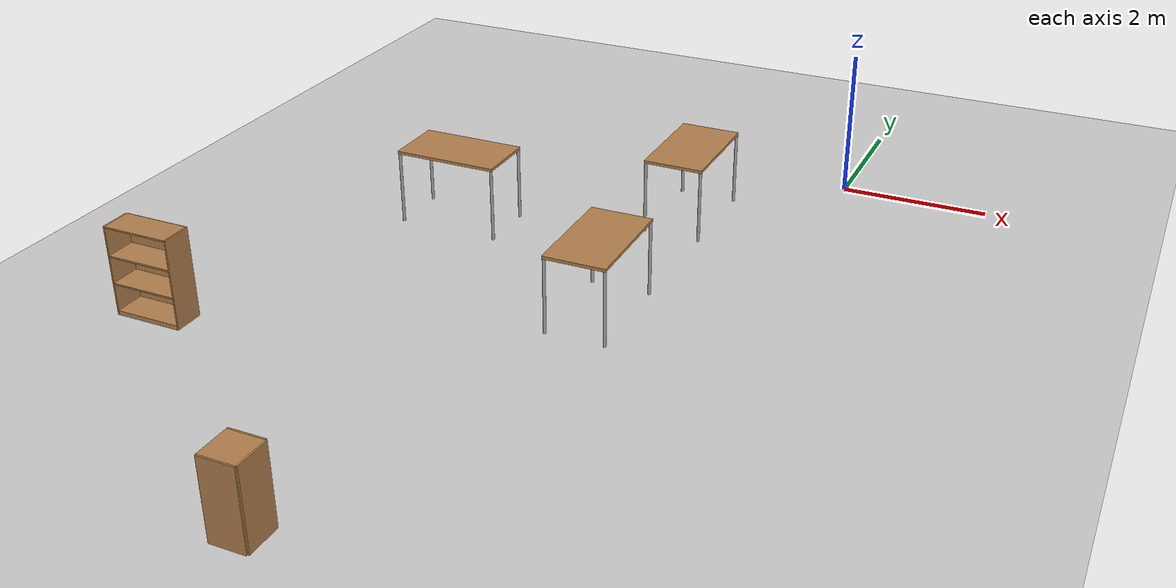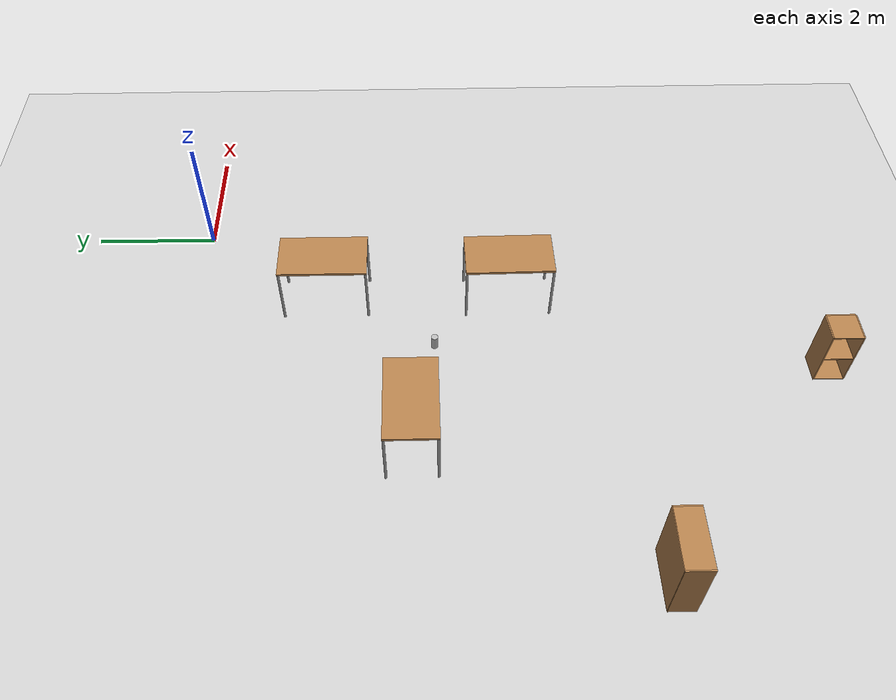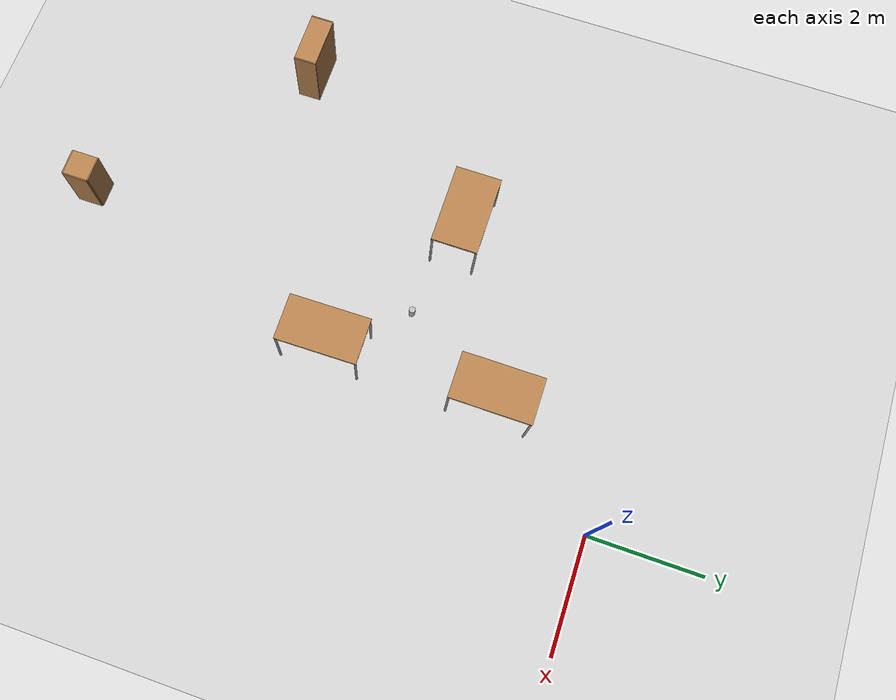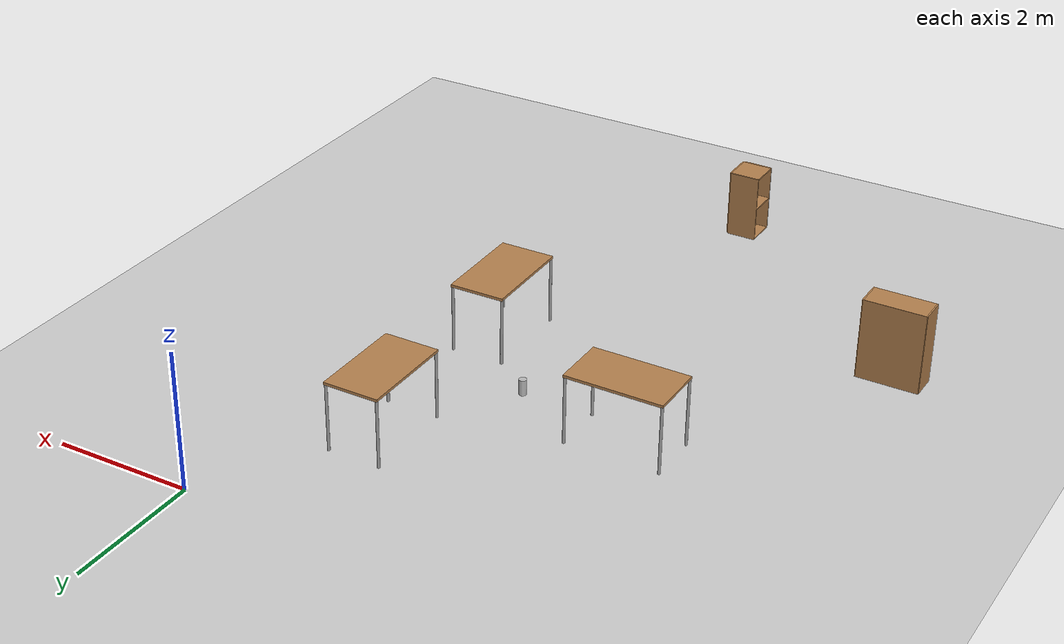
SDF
<sdf version="1.6">
 <world name="default">
  <light name="sun" type="directional">
   <pose>0 0 10 0 -0 0</pose>
   <diffuse>0.8 0.8 0.8 1</diffuse>
   <specular>0.1 0.1 0.1 1</specular>
   <attenuation>
    <range>1000</range>
    <constant>0.9</constant>
    <linear>0.01</linear>
    <quadratic>0.001</quadratic>
   </attenuation>
   <direction>-0.5 0.5 -1</direction>
  </light>
  <model name="ground_plane">
   <static>1</static>
   <link name="link">
    <collision name="collision">
     <geometry><plane><normal>0 0 1</normal><size>100 100</size></plane></geometry>
     <surface><friction><ode><mu>100</mu><mu2>50</mu2></ode></friction></surface>
    </collision>
    <visual name="visual">
     <transparency>1</transparency>
     <cast_shadows>0</cast_shadows>
     <geometry><plane><normal>0 0 1</normal><size>100 100</size></plane></geometry>
     <material>
      <script><uri>file://media/materials/scripts/gazebo.material</uri><name>Gazebo/Grey</name></script>
     </material>
    </visual>
   </link>
  </model>
  <gravity>0 0 -9.8</gravity>
  <magnetic_field>6e-06 2.3e-05 -4.2e-05</magnetic_field>
  <atmosphere type="adiabatic"/>
  <physics name="default_physics" default="0" type="ode">
   <max_step_size>0.001</max_step_size>
   <real_time_factor>1</real_time_factor>
   <real_time_update_rate>1000</real_time_update_rate>
  </physics>
  <scene><ambient>0.4 0.4 0.4 1</ambient><background>0.7 0.7 0.7 1</background><shadows>1</shadows></scene>
  <spherical_coordinates>
   <surface_model>EARTH_WGS84</surface_model>
   <latitude_deg>0</latitude_deg>
   <longitude_deg>0</longitude_deg>
   <elevation>0</elevation>
   <heading_deg>0</heading_deg>
  </spherical_coordinates>
  <light name="user_point_light_0" type="point">
   <pose>-1.65158 1.85099 1 0 -0 0</pose>
   <diffuse>0.5 0.5 0.5 1</diffuse>
   <specular>0.1 0.1 0.1 1</specular>
   <attenuation>
    <range>20</range>
    <constant>0.5</constant>
    <linear>0.01</linear>
    <quadratic>0.001</quadratic>
   </attenuation>
   <cast_shadows>0</cast_shadows>
   <direction>0 0 -1</direction>
  </light>
  <light name="user_point_light_1" type="point">
   <pose>-6.97544 -8.68415 1 0 -0 0</pose>
   <diffuse>0.5 0.5 0.5 1</diffuse>
   <specular>0.1 0.1 0.1 1</specular>
   <attenuation>
    <range>20</range>
    <constant>0.5</constant>
    <linear>0.01</linear>
    <quadratic>0.001</quadratic>
   </attenuation>
   <cast_shadows>0</cast_shadows>
   <direction>0 0 -1</direction>
  </light>
  <model name="table">
   <static>0</static>
   <link name="link">
    <collision name="surface">
     <pose>0 0 1 0 -0 0</pose>
     <geometry><box><size>1.5 0.8 0.03</size></box></geometry>
     <surface><friction><ode><mu>0.6</mu><mu2>0.6</mu2></ode></friction></surface>
    </collision>
    <visual name="visual1">
     <pose>0 0 1 0 -0 0</pose>
     <geometry><box><size>1.4 0.8 0.04</size></box></geometry>
     <material>
      <script><uri>file://media/materials/scripts/gazebo.material</uri><name>Gazebo/Wood</name></script>
     </material>
    </visual>
    <collision name="front_left_leg">
     <pose>0.68 0.38 0.5 0 -0 0</pose>
     <geometry><cylinder><radius>0.02</radius><length>1</length></cylinder></geometry>
    </collision>
    <visual name="front_left_leg">
     <pose>0.68 0.38 0.5 0 -0 0</pose>
     <geometry><cylinder><radius>0.02</radius><length>1</length></cylinder></geometry>
     <material>
      <script><uri>file://media/materials/scripts/gazebo.material</uri><name>Gazebo/Grey</name></script>
     </material>
    </visual>
    <collision name="front_right_leg">
     <pose>0.68 -0.38 0.5 0 -0 0</pose>
     <geometry><cylinder><radius>0.02</radius><length>1</length></cylinder></geometry>
    </collision>
    <visual name="front_right_leg">
     <pose>0.68 -0.38 0.5 0 -0 0</pose>
     <geometry><cylinder><radius>0.02</radius><length>1</length></cylinder></geometry>
     <material>
      <script><uri>file://media/materials/scripts/gazebo.material</uri><name>Gazebo/Grey</name></script>
     </material>
    </visual>
    <collision name="back_right_leg">
     <pose>-0.68 -0.38 0.5 0 -0 0</pose>
     <geometry><cylinder><radius>0.02</radius><length>1</length></cylinder></geometry>
    </collision>
    <visual name="back_right_leg">
     <pose>-0.68 -0.38 0.5 0 -0 0</pose>
     <geometry><cylinder><radius>0.02</radius><length>1</length></cylinder></geometry>
     <material>
      <script><uri>file://media/materials/scripts/gazebo.material</uri><name>Gazebo/Grey</name></script>
     </material>
    </visual>
    <collision name="back_left_leg">
     <pose>-0.68 0.38 0.5 0 -0 0</pose>
     <geometry><cylinder><radius>0.02</radius><length>1</length></cylinder></geometry>
    </collision>
    <visual name="back_left_leg">
     <pose>-0.68 0.38 0.5 0 -0 0</pose>
     <geometry><cylinder><radius>0.02</radius><length>1</length></cylinder></geometry>
     <material>
      <script><uri>file://media/materials/scripts/gazebo.material</uri><name>Gazebo/Grey</name></script>
     </material>
    </visual>
    <inertial>
     <inertia><ixx>1</ixx><ixy>0</ixy><ixz>0</ixz><iyy>1</iyy><iyz>0</iyz><izz>1</izz></inertia>
     <mass>1</mass>
    </inertial>
   </link>
   <pose>-1.57844 -2.11063 0.189796 2e-06 -4e-06 -1.57217</pose>
  </model>
  <model name="table_0">
   <static>0</static>
   <link name="link">
    <collision name="surface">
     <pose>0 0 1 0 -0 0</pose>
     <geometry><box><size>1.5 0.8 0.03</size></box></geometry>
     <surface><friction><ode><mu>0.6</mu><mu2>0.6</mu2></ode></friction></surface>
    </collision>
    <visual name="visual1">
     <pose>0 0 1 0 -0 0</pose>
     <geometry><box><size>1.4 0.8 0.04</size></box></geometry>
     <material>
      <script><uri>file://media/materials/scripts/gazebo.material</uri><name>Gazebo/Wood</name></script>
     </material>
    </visual>
    <collision name="front_left_leg">
     <pose>0.68 0.38 0.5 0 -0 0</pose>
     <geometry><cylinder><radius>0.02</radius><length>1</length></cylinder></geometry>
    </collision>
    <visual name="front_left_leg">
     <pose>0.68 0.38 0.5 0 -0 0</pose>
     <geometry><cylinder><radius>0.02</radius><length>1</length></cylinder></geometry>
     <material>
      <script><uri>file://media/materials/scripts/gazebo.material</uri><name>Gazebo/Grey</name></script>
     </material>
    </visual>
    <collision name="front_right_leg">
     <pose>0.68 -0.38 0.5 0 -0 0</pose>
     <geometry><cylinder><radius>0.02</radius><length>1</length></cylinder></geometry>
    </collision>
    <visual name="front_right_leg">
     <pose>0.68 -0.38 0.5 0 -0 0</pose>
     <geometry><cylinder><radius>0.02</radius><length>1</length></cylinder></geometry>
     <material>
      <script><uri>file://media/materials/scripts/gazebo.material</uri><name>Gazebo/Grey</name></script>
     </material>
    </visual>
    <collision name="back_right_leg">
     <pose>-0.68 -0.38 0.5 0 -0 0</pose>
     <geometry><cylinder><radius>0.02</radius><length>1</length></cylinder></geometry>
    </collision>
    <visual name="back_right_leg">
     <pose>-0.68 -0.38 0.5 0 -0 0</pose>
     <geometry><cylinder><radius>0.02</radius><length>1</length></cylinder></geometry>
     <material>
      <script><uri>file://media/materials/scripts/gazebo.material</uri><name>Gazebo/Grey</name></script>
     </material>
    </visual>
    <collision name="back_left_leg">
     <pose>-0.68 0.38 0.5 0 -0 0</pose>
     <geometry><cylinder><radius>0.02</radius><length>1</length></cylinder></geometry>
    </collision>
    <visual name="back_left_leg">
     <pose>-0.68 0.38 0.5 0 -0 0</pose>
     <geometry><cylinder><radius>0.02</radius><length>1</length></cylinder></geometry>
     <material>
      <script><uri>file://media/materials/scripts/gazebo.material</uri><name>Gazebo/Grey</name></script>
     </material>
    </visual>
    <inertial>
     <inertia><ixx>1</ixx><ixy>0</ixy><ixz>0</ixz><iyy>1</iyy><iyz>0</iyz><izz>1</izz></inertia>
     <mass>1</mass>
    </inertial>
   </link>
   <pose>-1.6024 -5.05129 0.189792 0 0 -1.55863</pose>
  </model>
  <model name="cabinet">
   <static>1</static>
   <link name="cabinet_bottom_plate">
    <inertial>
     <pose>0 0 -1 0 -0 0</pose>
     <inertia><ixx>2.05</ixx><ixy>0</ixy><ixz>0</ixz><iyy>2.05</iyy><iyz>0</iyz><izz>2.05</izz></inertia>
     <mass>25</mass>
    </inertial>
    <collision name="cabinet_bottom_plate_geom">
     <pose>0 0 0.01 0 -0 0</pose>
     <geometry><box><size>0.45 0.45 0.02</size></box></geometry>
    </collision>
    <visual name="cabinet_bottom_plate_geom_visual">
     <pose>0 0 0.01 0 -0 0</pose>
     <geometry><box><size>0.45 0.45 0.02</size></box></geometry>
     <material>
      <script><uri>file://media/materials/scripts/gazebo.material</uri><name>Gazebo/Wood</name></script>
     </material>
    </visual>
    <collision name="cabinet_bottom_plate_geom_cabinet_back_plate">
     <pose>0.235 0 0.51 0 -0 0</pose>
     <geometry><box><size>0.02 0.45 1.02</size></box></geometry>
    </collision>
    <visual name="cabinet_bottom_plate_geom_cabinet_back_plate_visual">
     <pose>0.235 0 0.51 0 -0 0</pose>
     <geometry><box><size>0.02 0.45 1.02</size></box></geometry>
     <material>
      <script><uri>file://media/materials/scripts/gazebo.material</uri><name>Gazebo/Wood</name></script>
     </material>
    </visual>
    <collision name="cabinet_bottom_plate_geom_cabinet_left_plate">
     <pose>0 0.235 0.51 0 -0 0</pose>
     <geometry><box><size>0.45 0.02 1.02</size></box></geometry>
    </collision>
    <visual name="cabinet_bottom_plate_geom_cabinet_left_plate_visual">
     <pose>0 0.235 0.51 0 -0 0</pose>
     <geometry><box><size>0.45 0.02 1.02</size></box></geometry>
     <material>
      <script><uri>file://media/materials/scripts/gazebo.material</uri><name>Gazebo/Wood</name></script>
     </material>
    </visual>
    <collision name="cabinet_bottom_plate_geom_cabinet_middle_plate">
     <pose>0 0 0.51 0 -0 0</pose>
     <geometry><box><size>0.45 0.45 0.02</size></box></geometry>
    </collision>
    <visual name="cabinet_bottom_plate_geom_cabinet_middle_plate_visual">
     <pose>0 0 0.51 0 -0 0</pose>
     <geometry><box><size>0.45 0.45 0.02</size></box></geometry>
     <material>
      <script><uri>file://media/materials/scripts/gazebo.material</uri><name>Gazebo/Wood</name></script>
     </material>
    </visual>
    <collision name="cabinet_bottom_plate_geom_cabinet_right_plate">
     <pose>0 -0.235 0.51 0 -0 0</pose>
     <geometry><box><size>0.45 0.02 1.02</size></box></geometry>
    </collision>
    <visual name="cabinet_bottom_plate_geom_cabinet_right_plate_visual">
     <pose>0 -0.235 0.51 0 -0 0</pose>
     <geometry><box><size>0.45 0.02 1.02</size></box></geometry>
     <material>
      <script><uri>file://media/materials/scripts/gazebo.material</uri><name>Gazebo/Wood</name></script>
     </material>
    </visual>
    <collision name="cabinet_bottom_plate_geom_cabinet_top_plate">
     <pose>0 0 1.01 0 -0 0</pose>
     <geometry><box><size>0.45 0.45 0.02</size></box></geometry>
    </collision>
    <visual name="cabinet_bottom_plate_geom_cabinet_top_plate_visual">
     <pose>0 0 1.01 0 -0 0</pose>
     <geometry><box><size>0.45 0.45 0.02</size></box></geometry>
     <material>
      <script><uri>file://media/materials/scripts/gazebo.material</uri><name>Gazebo/Wood</name></script>
     </material>
    </visual>
   </link>
   <pose>-3.05726 -10.0242 0 0 -0 0</pose>
  </model>
  <model name="bookshelf">
   <static>1</static>
   <link name="link">
    <inertial><mass>1</mass></inertial>
    <collision name="back">
     <pose>0 0.005 0.6 0 -0 0</pose>
     <geometry><box><size>0.9 0.01 1.2</size></box></geometry>
    </collision>
    <visual name="visual1">
     <pose>0 0.005 0.6 0 -0 0</pose>
     <geometry><box><size>0.9 0.01 1.2</size></box></geometry>
     <material>
      <script><uri>file://media/materials/scripts/gazebo.material</uri><name>Gazebo/Wood</name></script>
     </material>
    </visual>
    <collision name="left_side">
     <pose>0.45 -0.195 0.6 0 -0 0</pose>
     <geometry><box><size>0.02 0.4 1.2</size></box></geometry>
    </collision>
    <visual name="visual2">
     <pose>0.45 -0.195 0.6 0 -0 0</pose>
     <geometry><box><size>0.02 0.4 1.2</size></box></geometry>
     <material>
      <script><uri>file://media/materials/scripts/gazebo.material</uri><name>Gazebo/Wood</name></script>
     </material>
    </visual>
    <collision name="right_side">
     <pose>-0.45 -0.195 0.6 0 -0 0</pose>
     <geometry><box><size>0.02 0.4 1.2</size></box></geometry>
    </collision>
    <visual name="visual3">
     <pose>-0.45 -0.195 0.6 0 -0 0</pose>
     <geometry><box><size>0.02 0.4 1.2</size></box></geometry>
     <material>
      <script><uri>file://media/materials/scripts/gazebo.material</uri><name>Gazebo/Wood</name></script>
     </material>
    </visual>
    <collision name="bottom">
     <pose>0 -0.195 0.03 0 -0 0</pose>
     <geometry><box><size>0.88 0.4 0.06</size></box></geometry>
    </collision>
    <visual name="visual4">
     <pose>0 -0.195 0.03 0 -0 0</pose>
     <geometry><box><size>0.88 0.4 0.06</size></box></geometry>
     <material>
      <script><uri>file://media/materials/scripts/gazebo.material</uri><name>Gazebo/Wood</name></script>
     </material>
    </visual>
    <collision name="top">
     <pose>0 -0.195 1.19 0 -0 0</pose>
     <geometry><box><size>0.88 0.4 0.02</size></box></geometry>
    </collision>
    <visual name="visual5">
     <pose>0 -0.195 1.19 0 -0 0</pose>
     <geometry><box><size>0.88 0.4 0.02</size></box></geometry>
     <material>
      <script><uri>file://media/materials/scripts/gazebo.material</uri><name>Gazebo/Wood</name></script>
     </material>
    </visual>
    <collision name="low_shelf">
     <pose>0 -0.195 0.43 0 -0 0</pose>
     <geometry><box><size>0.88 0.4 0.02</size></box></geometry>
    </collision>
    <visual name="visual6">
     <pose>0 -0.195 0.43 0 -0 0</pose>
     <geometry><box><size>0.88 0.4 0.02</size></box></geometry>
     <material>
      <script><uri>file://media/materials/scripts/gazebo.material</uri><name>Gazebo/Wood</name></script>
     </material>
    </visual>
    <collision name="high_shelf">
     <pose>0 -0.195 0.8 0 -0 0</pose>
     <geometry><box><size>0.88 0.4 0.02</size></box></geometry>
    </collision>
    <visual name="visual7">
     <pose>0 -0.195 0.8 0 -0 0</pose>
     <geometry><box><size>0.88 0.4 0.02</size></box></geometry>
     <material>
      <script><uri>file://media/materials/scripts/gazebo.material</uri><name>Gazebo/Wood</name></script>
     </material>
    </visual>
   </link>
   <pose>-6.5804 -6.83982 0 0 -0 0</pose>
  </model>
  <model name="beer">
   <link name="link">
    <pose>0 0 0.115 0 -0 0</pose>
    <inertial>
     <mass>0.39</mass>
     <inertia><ixx>0.00058</ixx><ixy>0</ixy><ixz>0</ixz><iyy>0.00058</iyy><iyz>0</iyz><izz>0.00019</izz></inertia>
    </inertial>
    <collision name="collision">
     <geometry><cylinder><radius>0.055</radius><length>0.23</length></cylinder></geometry>
    </collision>
    <visual name="visual">
     <geometry><cylinder><radius>0.055</radius><length>0.23</length></cylinder></geometry>
     <material>
      <script>
       <uri>model://beer/materials/scripts</uri>
       <uri>model://beer/materials/textures</uri>
       <name>Beer/Diffuse</name>
      </script>
     </material>
    </visual>
   </link>
   <pose>-2.62842 -3.85314 0.189805 2.4e-05 9.2e-05 -3.9e-05</pose>
  </model>
  <model name="table_1">
   <static>0</static>
   <link name="link">
    <collision name="surface">
     <pose>0 0 1 0 -0 0</pose>
     <geometry><box><size>1.5 0.8 0.03</size></box></geometry>
     <surface><friction><ode><mu>0.6</mu><mu2>0.6</mu2></ode></friction></surface>
    </collision>
    <visual name="visual1">
     <pose>0 0 1 0 -0 0</pose>
     <geometry><box><size>1.4 0.8 0.04</size></box></geometry>
     <material>
      <script><uri>file://media/materials/scripts/gazebo.material</uri><name>Gazebo/Wood</name></script>
     </material>
    </visual>
    <collision name="front_left_leg">
     <pose>0.68 0.38 0.5 0 -0 0</pose>
     <geometry><cylinder><radius>0.02</radius><length>1</length></cylinder></geometry>
    </collision>
    <visual name="front_left_leg">
     <pose>0.68 0.38 0.5 0 -0 0</pose>
     <geometry><cylinder><radius>0.02</radius><length>1</length></cylinder></geometry>
     <material>
      <script><uri>file://media/materials/scripts/gazebo.material</uri><name>Gazebo/Grey</name></script>
     </material>
    </visual>
    <collision name="front_right_leg">
     <pose>0.68 -0.38 0.5 0 -0 0</pose>
     <geometry><cylinder><radius>0.02</radius><length>1</length></cylinder></geometry>
    </collision>
    <visual name="front_right_leg">
     <pose>0.68 -0.38 0.5 0 -0 0</pose>
     <geometry><cylinder><radius>0.02</radius><length>1</length></cylinder></geometry>
     <material>
      <script><uri>file://media/materials/scripts/gazebo.material</uri><name>Gazebo/Grey</name></script>
     </material>
    </visual>
    <collision name="back_right_leg">
     <pose>-0.68 -0.38 0.5 0 -0 0</pose>
     <geometry><cylinder><radius>0.02</radius><length>1</length></cylinder></geometry>
    </collision>
    <visual name="back_right_leg">
     <pose>-0.68 -0.38 0.5 0 -0 0</pose>
     <geometry><cylinder><radius>0.02</radius><length>1</length></cylinder></geometry>
     <material>
      <script><uri>file://media/materials/scripts/gazebo.material</uri><name>Gazebo/Grey</name></script>
     </material>
    </visual>
    <collision name="back_left_leg">
     <pose>-0.68 0.38 0.5 0 -0 0</pose>
     <geometry><cylinder><radius>0.02</radius><length>1</length></cylinder></geometry>
    </collision>
    <visual name="back_left_leg">
     <pose>-0.68 0.38 0.5 0 -0 0</pose>
     <geometry><cylinder><radius>0.02</radius><length>1</length></cylinder></geometry>
     <material>
      <script><uri>file://media/materials/scripts/gazebo.material</uri><name>Gazebo/Grey</name></script>
     </material>
    </visual>
    <inertial>
     <inertia><ixx>1</ixx><ixy>0</ixy><ixz>0</ixz><iyy>1</iyy><iyz>0</iyz><izz>1</izz></inertia>
     <mass>1</mass>
    </inertial>
   </link>
   <pose>-4.34494 -3.48844 0.1898 0 -0 0</pose>
  </model>
 </world>
</sdf>
